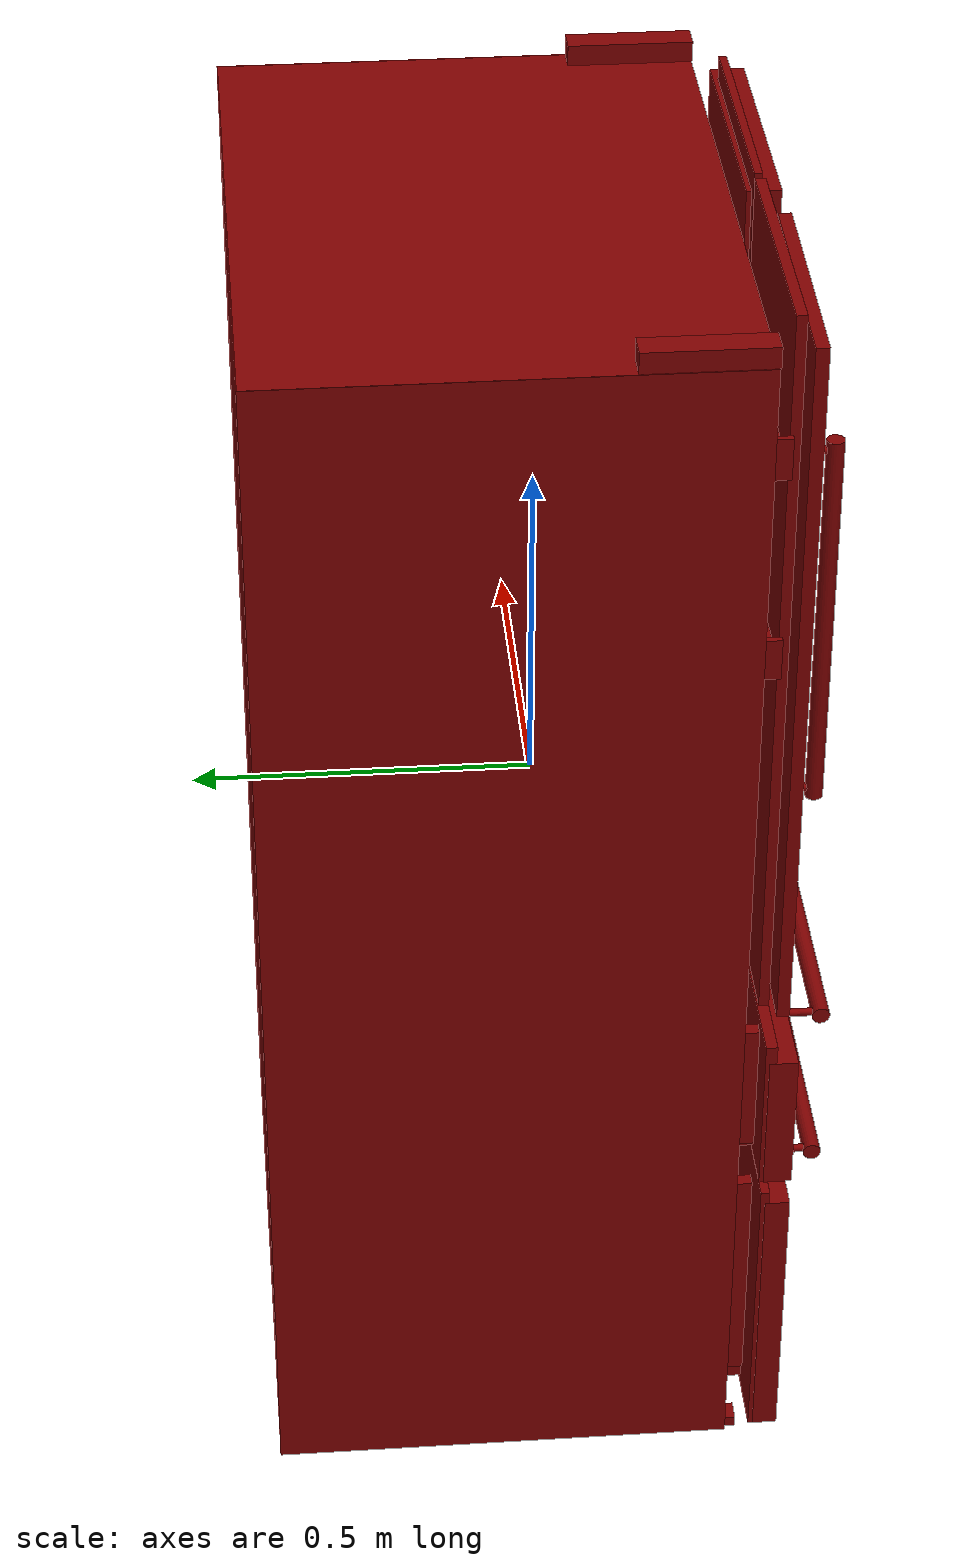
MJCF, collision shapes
<?xml version='1.0' encoding='UTF-8'?>
<mujoco model="model">
  <option timestep="0.002" gravity="0.0 0.0 -9.81"/>
  <compiler angle="radian"/>
  <asset>
    <mesh file="visuals/freezer0.obj" name="freezer0_vis"/>
    <mesh file="visuals/freezer1.obj" name="freezer1_vis"/>
    <mesh file="visuals/fridge_drawer0.obj" name="fridge_drawer0_vis"/>
    <mesh file="visuals/fridge_left_door.obj" name="fridge_left_door_vis"/>
    <mesh file="visuals/fridge_right_door.obj" name="fridge_right_door_vis"/>
    <mesh file="visuals/Body001.obj" name="Body001_vis"/>
    <mesh file="visuals/Body001_Clear.obj" name="Body001_Clear_vis"/>
    <texture file="visuals/T_BC001.png" name="Body001_material" type="2d"/>
    <material name="Body001_material" rgba="1 1 1 1.0" texture="Body001_material" shininess="0.141421377658844" specular="1"/>
    <texture file="visuals/T_BC001.png" name="freezer0_material" type="2d"/>
    <material name="freezer0_material" rgba="1 1 1 1.0" texture="freezer0_material" shininess="0.141421377658844" specular="1"/>
    <texture file="visuals/T_BC001.png" name="freezer1_material" type="2d"/>
    <material name="freezer1_material" rgba="1 1 1 1.0" texture="freezer1_material" shininess="0.141421377658844" specular="1"/>
    <texture file="visuals/T_BC001.png" name="fridge_drawer0_material" type="2d"/>
    <material name="fridge_drawer0_material" rgba="1 1 1 1.0" texture="fridge_drawer0_material" shininess="0.141421377658844" specular="0.3103448502657381"/>
    <texture file="visuals/T_BC001.png" name="fridge_left_door_material" type="2d"/>
    <material name="fridge_left_door_material" rgba="1 1 1 1.0" texture="fridge_left_door_material" shininess="0.141421377658844" specular="1"/>
    <texture file="visuals/T_BC001.png" name="fridge_right_door_material" type="2d"/>
    <material name="fridge_right_door_material" rgba="1 1 1 1.0" texture="fridge_right_door_material" shininess="0.141421377658844" specular="1"/>
    <material name="Body001_Clear_material" rgba="0.0812610536813736 0.0812610536813736 0.0812610536813736 0.699999988079071" shininess="0.141421377658844" specular="0.3103448502657381"/>
  </asset>
  <default>
    <default class="visual">
      <geom conaffinity="0" contype="0" group="1" type="mesh"/>
    </default>
    <default class="collision">
      <geom group="0" rgba="0.5 0 0 0.5"/>
    </default>
    <default class="spawn">
      <geom group="0" rgba="1 1 1 0.5" contype="0" conaffinity="0"/>
      <site group="0" rgba="1 1 1 0.5"/>
    </default>
    <default class="region">
      <geom group="1" conaffinity="0" contype="0" rgba="0 1 0 0"/>
    </default>
  </default>
  <worldbody>
    <body>
      <body name="object">
        <geom mesh="Body001_vis" type="mesh" solimp="0.998 0.998 0.001" solref="0.001 1" friction="0.95 0.3 0.1" class="visual" material="Body001_material"/>
        <geom class="collision" type="box" pos="0.42984358 0.36865285 -0.94795674" size="0.015452206134796143 0.016618922352790833 0.00845328625291586" quat="1.0 0.0 0.0 0.0"/>
        <geom class="collision" type="box" pos="0.42984358 -0.26718059 -0.94795674" size="0.015452208928763866 0.016618922352790833 0.008453287184238434" quat="1.0 0.0 0.0 0.0"/>
        <geom class="collision" type="box" pos="-0.42590883 0.36865285 -0.94795674" size="0.015452210791409016 0.016618922352790833 0.008453288115561008" quat="1.0 0.0 0.0 0.0"/>
        <geom class="collision" type="box" pos="-0.42590883 -0.26718059 -0.94795674" size="0.015452212654054165 0.016618922352790833 0.008453289978206158" quat="1.0 0.0 0.0 0.0"/>
        <geom class="collision" type="box" pos="0.00177230 0.02961398 -0.92061019" size="0.4197862148284912 0.2938579022884369 0.02023116499185562" quat="1.0 0.0 0.0 0.0"/>
        <geom class="collision" type="box" pos="0.00177231 0.02313977 -0.45573914" size="0.419784814119339 0.2873835861682892 0.030527599155902863" quat="1.0 0.0 0.0 0.0"/>
        <geom class="collision" type="box" pos="0.00177234 0.02875912 -0.13336709" size="0.41978350281715393 0.2930029332637787 0.06380129605531693" quat="1.0 0.0 0.0 0.0"/>
        <geom class="collision" type="box" pos="-0.00022298 -0.21301201 0.55430061" size="0.41421452164649963 0.007532095070928335 0.00512989517301321" quat="1.0 0.0 0.0 0.0"/>
        <geom class="collision" type="box" pos="-0.00022298 -0.21301201 0.23745067" size="0.41421520709991455 0.007532114628702402 0.0051299030892550945" quat="1.0 0.0 0.0 0.0"/>
        <geom class="collision" type="box" pos="0.40961686 0.03935399 0.54600096" size="0.004965109284967184 0.2484082132577896 0.004120341967791319" quat="1.0 0.0 0.0 0.0"/>
        <geom class="collision" type="box" pos="0.40961686 0.03935399 0.56252599" size="0.00523786386474967 0.2484082579612732 0.0041762590408325195" quat="1.0 0.0 0.0 0.0"/>
        <geom class="collision" type="box" pos="0.40961686 0.03935399 0.22841084" size="0.004965109284967184 0.2484566867351532 0.00366237317211926" quat="1.0 0.0 0.0 0.0"/>
        <geom class="collision" type="box" pos="0.40961686 0.03935399 0.24493575" size="0.005118096712976694 0.24840834736824036 0.004062267951667309" quat="1.0 0.0 0.0 0.0"/>
        <geom class="collision" type="box" pos="0.01277163 0.03935399 0.54600096" size="0.004965109284967184 0.24843116104602814 0.004066075198352337" quat="1.0 0.0 0.0 0.0"/>
        <geom class="collision" type="box" pos="0.01277163 0.03935399 0.56252599" size="0.004964688792824745 0.24843083322048187 0.004071761853992939" quat="1.0 0.0 0.0 0.0"/>
        <geom class="collision" type="box" pos="0.01243832 0.03935399 0.22841084" size="0.00506527628749609 0.25342294573783875 0.003735574660822749" quat="1.0 0.0 0.0 0.0"/>
        <geom class="collision" type="box" pos="0.01286177 0.03935399 0.24493575" size="0.0054345885291695595 0.2484082132577896 0.0040081702172756195" quat="1.0 0.0 0.0 0.0"/>
        <geom class="collision" type="box" pos="-0.01125036 0.03935399 0.54600096" size="0.005151953548192978 0.24842916429042816 0.0037997474428266287" quat="1.0 0.0 0.0 0.0"/>
        <geom class="collision" type="box" pos="-0.01162012 0.03935399 0.56252599" size="0.005262718070298433 0.25578537583351135 0.004231690429151058" quat="1.0 0.0 0.0 0.0"/>
        <geom class="collision" type="box" pos="-0.01131474 0.03935399 0.22841084" size="0.00543074868619442 0.24842849373817444 0.0040053571574389935" quat="1.0 0.0 0.0 0.0"/>
        <geom class="collision" type="box" pos="-0.01145766 0.03935399 0.24493575" size="0.005241086706519127 0.24842816591262817 0.003865764709189534" quat="1.0 0.0 0.0 0.0"/>
        <geom class="collision" type="box" pos="-0.41034319 0.03935399 0.54600096" size="0.004965109284967184 0.24842716753482819 0.003950977232307196" quat="1.0 0.0 0.0 0.0"/>
        <geom class="collision" type="box" pos="-0.41034319 0.03935399 0.56252599" size="0.004965109284967184 0.24840714037418365 0.004047114867717028" quat="1.0 0.0 0.0 0.0"/>
        <geom class="collision" type="box" pos="-0.41034319 0.03935399 0.22841084" size="0.004965109284967184 0.24844582378864288 0.003662203438580036" quat="1.0 0.0 0.0 0.0"/>
        <geom class="collision" type="box" pos="-0.41034319 0.03935399 0.24493575" size="0.005233576521277428 0.2484261691570282 0.004060378763824701" quat="1.0 0.0 0.0 0.0"/>
        <geom class="collision" type="box" pos="-0.44343554 -0.17569617 0.94194919" size="0.019678855314850807 0.090128593146801 0.015083436854183674" quat="1.0 0.0 0.0 0.0"/>
        <geom class="collision" type="box" pos="-0.00047235 0.07583314 0.89791447" size="0.4632018804550171 0.3402913212776184 0.028484055772423744" quat="1.0 0.0 0.0 0.0"/>
        <geom class="collision" type="box" pos="0.43896506 0.07616267 -0.00695391" size="0.02521035075187683 0.3405962586402893 0.9331059455871582" quat="1.0 0.0 0.0 0.0"/>
        <geom class="collision" type="box" pos="0.00136162 0.36183953 -0.00695391" size="0.41877856850624084 0.05492866784334183 0.933107852935791" quat="1.0 0.0 0.0 0.0"/>
        <geom class="collision" type="box" pos="-0.43909352 0.07615492 -0.00695390" size="0.02505914308130741 0.34061428904533386 0.933157742023468" quat="1.0 0.0 0.0 0.0"/>
        <geom class="collision" type="box" pos="0.44458929 -0.17569617 0.94194919" size="0.019508318975567818 0.09012862294912338 0.015083483420312405" quat="1.0 0.0 0.0 0.0"/>
        <geom class="collision" type="box" pos="-0.00620679 0.03034712 0.55457360" size="0.4269646108150482 0.2501908838748932 0.0031014392152428627" quat="1.0 0.0 0.0 0.0"/>
        <geom class="collision" type="box" pos="-0.00620679 0.03034712 0.23717283" size="0.42696329951286316 0.25019022822380066 0.0031013614498078823" quat="1.0 0.0 0.0 0.0"/>
        <body name="freezer0">
          <geom class="region" name="reg_freezer0" type="box" pos="0.001841390000000026 -0.012484675 -0.6787536" size="0.37858 0.273483915 0.18825707"/>
          <joint axis="0.0 -1.0 0.0" pos="0.00033662 -0.05876121 -0.68975675" limited="true" name="freezer0_door_joint" range="0.0 0.45" type="slide" damping="1" frictionloss="1" armature=".01" stiffness="0.05"/>
          <geom mesh="freezer0_vis" type="mesh" solimp="0.998 0.998 0.001" solref="0.001 1" friction="0.95 0.3 0.1" class="visual" material="freezer0_material"/>
          <geom class="collision" type="cylinder" pos="0.29192481 -0.36754894 -0.52766061" size="0.005888763815164566 0.026645831763744354" quat="0.49578389525413513 -0.5041813850402832 -0.49578332901000977 -0.5041808485984802" name="freezer0_door_handle_2"/>
          <geom class="collision" type="cylinder" pos="0.00059895 -0.40372101 -0.52773124" size="0.013165506534278393 0.30272483825683594" quat="1.345954501630331e-06 0.7071086168289185 -1.3459468846122036e-06 0.7071049213409424" name="freezer0_door_handle_main"/>
          <geom class="collision" type="cylinder" pos="-0.29077261 -0.36730072 -0.52766061" size="0.005888763815164566 0.026645831763744354" quat="0.4978587329387665 -0.5021330714225769 -0.49785780906677246 -0.5021321177482605" name="freezer0_door_handle_1"/>
          <geom class="collision" type="box" pos="-0.00086141 -0.32558868 -0.70537031" size="0.46187272667884827 0.018312308937311172 0.2257368564605713" quat="1.0 0.0 0.0 0.0" name="freezer0_door_main"/>
          <geom class="collision" type="box" pos="-0.39120873 -0.01536940 -0.68238950" size="0.009748414158821106 0.281876802444458 0.1878126859664917" quat="1.0 0.0 0.0 0.0"/>
          <geom class="collision" type="box" pos="0.39288268 -0.01688645 -0.68238950" size="0.008246734738349915 0.2802877724170685 0.1878127157688141" quat="1.0 0.0 0.0 0.0"/>
          <geom class="collision" type="box" pos="0.00000210 -0.30700526 -0.69531298" size="0.46187296509742737 0.0065062325447797775 0.2357122302055359" quat="1.0 0.0 0.0 0.0"/>
          <geom class="collision" type="box" pos="-0.00057386 -0.01600779 -0.88121319" size="0.39667123556137085 0.2806006968021393 0.011456347070634365" quat="1.0 0.0 0.0 0.0"/>
          <geom class="collision" type="box" pos="0.00040590 0.27320441 -0.68118864" size="0.3966912031173706 0.007516819518059492 0.18661190569400787" quat="1.0 0.0 0.0 0.0"/>
        </body>
        <body name="freezer1">
          <geom class="region" name="reg_freezer1" type="box" pos="0.001841390000000026 -0.006287769999999998 -0.306691595" size="0.37858 0.27968082000000005 0.095274275"/>
          <joint axis="0.0 -1.0 0.0" pos="0.00033662 -0.05876121 -0.31061983" limited="true" name="freezer1_door_joint" range="0.0 0.45" type="slide" damping="1" frictionloss="1" armature=".01" stiffness="0.05"/>
          <geom mesh="freezer1_vis" type="mesh" solimp="0.998 0.998 0.001" solref="0.001 1" friction="0.95 0.3 0.1" class="visual" material="freezer1_material"/>
          <geom class="collision" type="box" pos="-0.39120879 -0.00769509 -0.30967465" size="0.009748482145369053 0.288638174533844 0.1049349382519722" quat="1.0 0.0 0.0 0.0"/>
          <geom class="collision" type="box" pos="-0.00057386 -0.00859007 -0.41360354" size="0.3966673016548157 0.2875553071498871 0.007772279437631369" quat="1.0 0.0 0.0 0.0"/>
          <geom class="collision" type="box" pos="0.39288125 -0.00911649 -0.31179327" size="0.01167675107717514 0.2869831323623657 0.10773320496082306" quat="1.0 0.0 0.0 0.0"/>
          <geom class="collision" type="box" pos="0.00033039 0.28768879 -0.30967465" size="0.3907175362110138 0.007418112829327583 0.1049349382519722" quat="1.0 0.0 0.0 0.0"/>
          <geom class="collision" type="box" pos="0.00000210 -0.30442336 -0.31004438" size="0.4618734121322632 0.008404901251196861 0.1269686222076416" quat="1.0 0.0 0.0 0.0"/>
          <geom class="collision" type="cylinder" pos="-0.29077219 -0.36907953 -0.26199701" size="0.005888763815164566 0.02531414106488228" quat="0.4972662329673767 -0.5027195811271667 -0.4972655475139618 -0.5027188658714294" name="freezer1_door_handle_1"/>
          <geom class="collision" type="cylinder" pos="0.29139186 -0.37018585 -0.26199701" size="0.005888763815164566 0.02531414106488228" quat="0.49826720356941223 -0.5017277598381042 -0.4982662796974182 -0.5017268061637878" name="freezer1_door_handle_2"/>
          <geom class="collision" type="cylinder" pos="0.00059894 -0.40372101 -0.26206768" size="0.013165506534278393 0.30272483825683594" quat="1.345954501630331e-06 0.7071086168289185 -1.3459468846122036e-06 0.7071049213409424" name="freezer1_door_handle_main"/>
          <geom class="collision" type="box" pos="-0.00086141 -0.32308862 -0.32480493" size="0.4618731141090393 0.020812366157770157 0.11210121214389801" quat="1.0 0.0 0.0 0.0" name="freezer1_door_main"/>
        </body>
        <body name="fridge_drawer0">
          <geom class="region" name="reg_fridge_drawer0" type="box" pos="-0.0019322249999999819 0.04560633 0.047421445000000007" size="0.32474933500000003 0.21474373 0.102655885"/>
          <joint axis="0.0 -1.0 0.0" pos="-0.00144510 0.04124281 0.07587343" limited="true" name="fridge_drawer0_joint" range="0.0 0.45" type="slide" damping="1" frictionloss="1" armature=".01" stiffness="0.05"/>
          <geom mesh="fridge_drawer0_vis" type="mesh" solimp="0.998 0.998 0.001" solref="0.001 1" friction="0.95 0.3 0.1" class="visual" material="fridge_drawer0_material"/>
          <geom class="collision" type="box" pos="0.34157903 0.02478646 0.07741693" size="0.015247294679284096 0.24078071117401123 0.1423705816268921" quat="1.0 0.0 0.0 0.0"/>
          <geom class="collision" type="box" pos="-0.34412199 0.02478646 0.07741150" size="0.015247294679284096 0.24078071117401123 0.14237599074840546" quat="1.0 0.0 0.0 0.0"/>
          <geom class="collision" type="box" pos="-0.00205558 0.02478647 -0.06150044" size="0.32968616485595703 0.24079088866710663 0.003704817034304142" quat="1.0 0.0 0.0 0.0"/>
          <geom class="collision" type="box" pos="-0.00205557 -0.19368690 0.04578838" size="0.3296985328197479 0.022307263687253 0.10436595231294632" quat="1.0 0.0 0.0 0.0"/>
          <geom class="collision" type="box" pos="-0.00121431 0.27566019 0.07575567" size="0.35673925280570984 0.010801669210195541 0.14132679998874664" quat="1.0 0.0 0.0 0.0"/>
          <geom class="collision" type="box" pos="-0.00238432 -0.14125912 0.20388362" size="0.332377552986145 0.0330713614821434 0.015292936936020851" quat="1.0 0.0 0.0 0.0"/>
        </body>
        <body name="fridge_left_door">
          <joint axis="0.0 0.0 -1.0" pos="-0.41056683 -0.31878299 0.39475736" limited="true" name="fridge_left_door_joint" range="0.0 1.5707963267948966" type="hinge" damping="1" frictionloss="1" armature=".01" stiffness="0.05"/>
          <geom mesh="fridge_left_door_vis" type="mesh" solimp="0.998 0.998 0.001" solref="0.001 1" friction="0.95 0.3 0.1" class="visual" material="fridge_left_door_material"/>
          <geom class="collision" type="box" pos="-0.23144282 -0.21524511 0.45048955" size="0.17223690450191498 0.004125186707824469 0.030971385538578033" quat="0.996243953704834 0.08659061789512634 0.0 0.0"/>
          <geom class="collision" type="box" pos="-0.05385762 -0.25689963 0.44902849" size="0.004358792211860418 0.039597418159246445 0.03096920996904373" quat="1.0 0.0 0.0 0.0"/>
          <geom class="collision" type="box" pos="-0.40564700 -0.25689963 0.44902849" size="0.004139211028814316 0.03959741070866585 0.030969204381108284" quat="1.0 0.0 0.0 0.0"/>
          <geom class="collision" type="box" pos="-0.22844688 -0.21698712 0.76012820" size="0.17530789971351624 0.004569387529045343 0.030971171334385872" quat="0.9948698282241821 0.10116351395845413 0.0 0.0"/>
          <geom class="collision" type="box" pos="-0.05481775 -0.25689963 0.76012820" size="0.0043587940745055676 0.03959739953279495 0.03096919134259224" quat="1.0 0.0 0.0 0.0"/>
          <geom class="collision" type="box" pos="-0.40498420 -0.25689963 0.76012820" size="0.004139212891459465 0.039597392082214355 0.030969183892011642" quat="1.0 0.0 0.0 0.0"/>
          <geom class="collision" type="box" pos="-0.19310803 -0.30254388 0.39381677" size="0.189984530210495 0.007381470408290625 0.5623525977134705" quat="1.0 0.0 0.0 0.0"/>
          <geom class="collision" type="box" pos="-0.21893083 -0.25702065 0.42374384" size="0.1768978238105774 0.04170215502381325 0.0057500023394823074" quat="1.0 0.0 0.0 0.0"/>
          <geom class="collision" type="box" pos="-0.21893083 -0.25702065 0.72898680" size="0.17689840495586395 0.04170215502381325 0.0057500023394823074" quat="1.0 0.0 0.0 0.0"/>
          <geom class="collision" type="cylinder" pos="-0.12587129 -0.36863604 0.59997928" size="0.0059707011096179485 0.028356797993183136" quat="0.7070278525352478 -0.7070278525352478 -0.01056497823446989 0.010564975440502167" name="fridge_left_door_handle_1"/>
          <geom class="collision" type="cylinder" pos="-0.12576720 -0.36934129 0.02723397" size="0.006679190788418055 0.02992553450167179" quat="0.7087106108665466 -0.7053312063217163 -0.011215515434741974 0.010553276166319847" name="fridge_left_door_handle_2"/>
          <geom class="collision" type="cylinder" pos="-0.12553252 -0.40512970 0.31401354" size="0.013059794902801514 0.3021082580089569" quat="1.0 0.0 0.0 0.0" name="fridge_left_door_handle_main"/>
          <geom class="collision" type="box" pos="-0.22190225 -0.32999408 0.37408027" size="0.1836230307817459 0.009414609521627426 0.546674907207489" quat="0.9999799132347107 0.0 -0.0 -0.006334782112389803" name="fridge_left_door_main"/>
        </body>
        <body name="fridge_right_door">
          <joint axis="0.0 0.0 1.0" pos="0.40977327 -0.31848133 0.39475736" limited="true" name="fridge_right_door_joint" range="0.0 1.5707963267948966" type="hinge" damping="1" frictionloss="1" armature=".01" stiffness="0.05"/>
          <geom mesh="fridge_right_door_vis" type="mesh" solimp="0.998 0.998 0.001" solref="0.001 1" friction="0.95 0.3 0.1" class="visual" material="fridge_right_door_material"/>
          <geom class="collision" type="box" pos="0.19421751 -0.30233783 0.39520460" size="0.18233472108840942 0.005654239095747471 0.5608000755310059" quat="1.0 0.0 0.0 0.0"/>
          <geom class="collision" type="box" pos="0.23002568 -0.21708699 0.45079473" size="0.17454703152179718 0.005378412548452616 0.03096972592175007" quat="0.9950945973396301 0.09892809391021729 0.0 0.0"/>
          <geom class="collision" type="box" pos="0.40554911 -0.24872577 0.44902849" size="0.0043588075786828995 0.03142339363694191 0.03096904791891575" quat="1.0 0.0 0.0 0.0"/>
          <geom class="collision" type="box" pos="0.05422325 -0.24872577 0.44902849" size="0.00413922592997551 0.03142338618636131 0.0309690423309803" quat="1.0 0.0 0.0 0.0"/>
          <geom class="collision" type="box" pos="0.22926966 -0.21990140 0.76059842" size="0.1734909564256668 0.007307406980544329 0.030969513580203056" quat="0.9979870319366455 0.06341830641031265 0.0 0.0"/>
          <geom class="collision" type="box" pos="0.40567676 -0.24872577 0.76012820" size="0.004358809441328049 0.03142337128520012 0.030969027429819107" quat="1.0 0.0 0.0 0.0"/>
          <geom class="collision" type="box" pos="0.05172841 -0.24872577 0.76012820" size="0.004139227792620659 0.03142336755990982 0.03096902184188366" quat="1.0 0.0 0.0 0.0"/>
          <geom class="collision" type="box" pos="0.22631223 -0.24884680 0.42374384" size="0.17690390348434448 0.033528294414281845 0.0057500023394823074" quat="1.0 0.0 0.0 0.0"/>
          <geom class="collision" type="box" pos="0.22631223 -0.24884680 0.72898680" size="0.17690448462963104 0.033528294414281845 0.0057500023394823074" quat="1.0 0.0 0.0 0.0"/>
          <geom class="collision" type="cylinder" pos="0.11662560 -0.36878199 0.60005939" size="0.005983693990856409 0.0278170146048069" quat="0.7071039080619812 0.7071039080619812 -0.0020141948480159044 -0.002014191821217537" name="fridge_right_door_handle_1"/>
          <geom class="collision" type="cylinder" pos="0.11648937 -0.36947841 0.02731524" size="0.006665781140327454 0.02938609942793846" quat="0.70541912317276 0.7087861895561218 -0.002055825898423791 -0.0013335736002773046" name="fridge_right_door_handle_2"/>
          <geom class="collision" type="cylinder" pos="0.11669855 -0.40476903 0.31402540" size="0.013059794902801514 0.3021082580089569" quat="7.549790126404332e-08 1.0 0.0 0.0" name="fridge_right_door_handle_main"/>
          <geom class="collision" type="box" pos="0.21919175 -0.31417889 0.37408027" size="0.19047564268112183 0.024581216275691986 0.5466806292533875" quat="1.0 0.0 0.0 0.0" name="fridge_right_door_main"/>
        </body>
        <body name="Body001_Clear">
          <geom mesh="Body001_Clear_vis" type="mesh" solimp="0.998 0.998 0.001" solref="0.001 1" friction="0.95 0.3 0.1" class="visual" material="Body001_Clear_material"/>
          <geom class="collision" type="box" pos="-0.00620679 0.03034712 0.55457360" size="0.4269646108150482 0.2501908838748932 0.0031014392152428627" quat="1.0 0.0 0.0 0.0"/>
          <geom class="collision" type="box" pos="-0.00620679 0.03034712 0.23717283" size="0.42696329951286316 0.25019022822380066 0.0031013614498078823" quat="1.0 0.0 0.0 0.0"/>
        </body>
        <geom class="region" name="reg_fridge_shelf0" type="box" pos="0.0004897799999999952 0.044464649999999994 0.39608069" size="0.40914376 0.23891992 0.14190191"/>
        <geom class="region" name="reg_fridge_shelf1" type="box" pos="0.0004897799999999952 0.044464649999999994 0.7178684200000001" size="0.40914376 0.23891992 0.14735857999999996"/>
        <geom class="region" name="reg_main" type="box" pos="0.00011849999999999361 0.036426034999999996 -4.663999999998669e-05" size="0.46510167 0.381327015 0.95807929"/>
      </body>
    </body>
  </worldbody>
  <actuator>
    <motor name="freezer0_door_joint_actuator" joint="freezer0_door_joint" gear="50"/>
    <motor name="freezer1_door_joint_actuator" joint="freezer1_door_joint" gear="50"/>
    <motor name="fridge_drawer0_joint_actuator" joint="fridge_drawer0_joint" gear="50"/>
    <motor name="fridge_left_door_joint_actuator" joint="fridge_left_door_joint" gear="50"/>
    <motor name="fridge_right_door_joint_actuator" joint="fridge_right_door_joint" gear="50"/>
  </actuator>
</mujoco>
